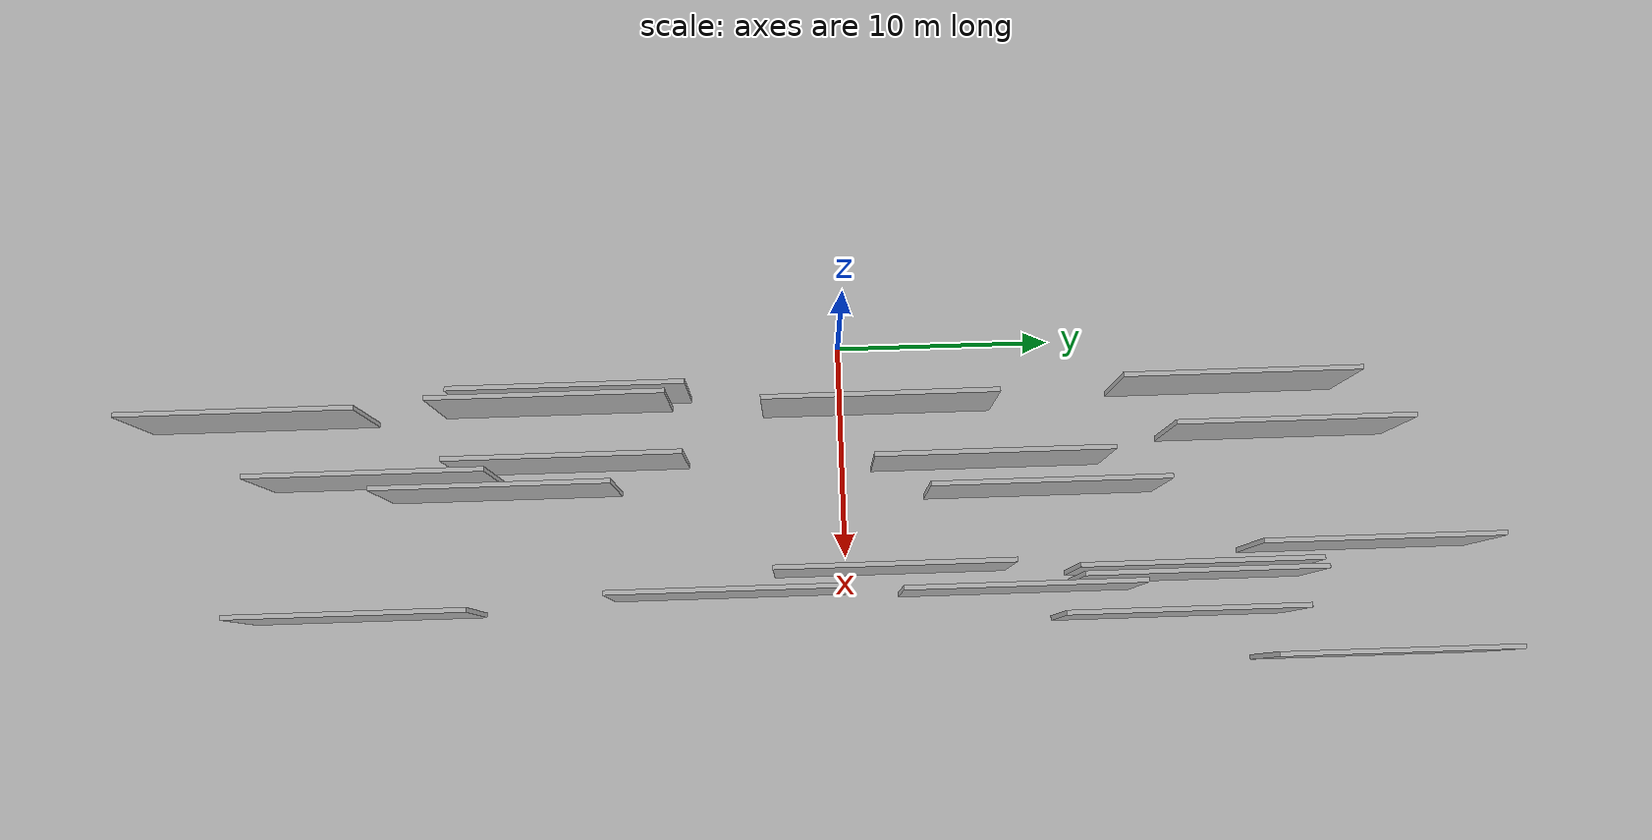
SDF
<?xml version="1.0" encoding="utf-8"?>

<sdf version="1.6">

   <world name="default">

      <gui fullscreen="0">

         <camera name="user_camera">

            <pose>-15 0 4.57585 0 0 0</pose>

            <view_controller>orbit</view_controller>

         </camera>

      </gui>

      <scene>

         <sky>

           <clouds>

             <speed>12</speed>

           </clouds>

         </sky>

         <ambient>0.4 0.4 0.4 1</ambient>

         <background>0.7 0.7 0.7 1</background>

         <shadows>1</shadows>

      </scene>

      <gravity>0 0 -9.8066</gravity>

      <magnetic_field>6e-06 2.3e-05 -4.2e-05</magnetic_field>

      <physics default="0" name="default_physics" type="ode">

         <ode>

            <solver>

               <type>quick</type>

               <iters>10</iters>

               <sor>1.0</sor>

               <use_dynamic_moi_rescaling>0</use_dynamic_moi_rescaling>

            </solver>

            <constraints>

               <cfm>0</cfm>

               <erp>0.2</erp>

               <contact_max_correcting_vel>100</contact_max_correcting_vel>

               <contact_surface_layer>0.001</contact_surface_layer>

            </constraints>

         </ode>

         <max_step_size>0.004</max_step_size>

         <real_time_factor>1</real_time_factor>

         <real_time_update_rate>250</real_time_update_rate>

      </physics>

      <light name="sun" type="directional">

         <cast_shadows>1</cast_shadows>

         <pose>0 0 10 0 0 0</pose>

         <diffuse>0.8 0.8 0.8 1</diffuse>

         <specular>0.2 0.2 0.2 1</specular>

         <attenuation>

            <range>1000</range>

            <constant>0.9</constant>

            <linear>0.01</linear>

            <quadratic>0.001</quadratic>

         </attenuation>

         <direction>-0.5 0.1 -0.9</direction>

      </light>

      <include>

         <name>ground_plane_1</name>

         <uri>model://HANNAS_ground_plane</uri>

         <pose>0 0 0  0 0 0</pose>

      </include>

      <include>

         <name>ground_plane_2</name>

         <uri>model://HANNAS_ground_plane</uri>

         <pose>100 0 0  0 0 0</pose>

      </include>

      <model name="HANNAS_wall_1">

         <static>1</static>

         <pose frame="">12.5194 -20.7181 5.0 0.000000 0.000000 1.570796</pose>

         <link name="link">

            <pose frame="">0 0 2.00 0 0 0</pose>

            <collision name="collision">

               <geometry>

                  <box>

                     <size>10.00 0.2 4.00</size>

                  </box>

               </geometry>

               <max_contacts>10</max_contacts>

               <surface>

                  <contact>

                     <ode/>

                  </contact>

                  <bounce/>

                  <friction>

                     <torsional>

                        <ode/>

                     </torsional>

                     <ode/>

                  </friction>

               </surface>

            </collision>

            <visual name="visual">

               <cast_shadows>0</cast_shadows>

               <geometry>

                  <box>

                     <size>10.00 0.2 4.00</size>

                  </box>

               </geometry>

               <material>

                  <script>

                     <uri>model://HANNAS_wall/materials/scripts</uri>

                     <uri>model://HANNAS_wall/materials/textures</uri>

                     <name>vrc/HANNAS_wall</name>

                  </script>

               </material>

            </visual>

            <self_collide>0</self_collide>

            <enable_wind>0</enable_wind>

            <kinematic>0</kinematic>

         </link>

      </model>

      <model name="HANNAS_wall_2">

         <static>1</static>

         <pose frame="">3.9833 -25.4585 5.0 0.000000 0.000000 1.570796</pose>

         <link name="link">

            <pose frame="">0 0 2.00 0 0 0</pose>

            <collision name="collision">

               <geometry>

                  <box>

                     <size>10.00 0.2 4.00</size>

                  </box>

               </geometry>

               <max_contacts>10</max_contacts>

               <surface>

                  <contact>

                     <ode/>

                  </contact>

                  <bounce/>

                  <friction>

                     <torsional>

                        <ode/>

                     </torsional>

                     <ode/>

                  </friction>

               </surface>

            </collision>

            <visual name="visual">

               <cast_shadows>0</cast_shadows>

               <geometry>

                  <box>

                     <size>10.00 0.2 4.00</size>

                  </box>

               </geometry>

               <material>

                  <script>

                     <uri>model://HANNAS_wall/materials/scripts</uri>

                     <uri>model://HANNAS_wall/materials/textures</uri>

                     <name>vrc/HANNAS_wall</name>

                  </script>

               </material>

            </visual>

            <self_collide>0</self_collide>

            <enable_wind>0</enable_wind>

            <kinematic>0</kinematic>

         </link>

      </model>

      <model name="HANNAS_wall_3">

         <static>1</static>

         <pose frame="">10.7550 21.8857 5.0 0.000000 0.000000 1.570796</pose>

         <link name="link">

            <pose frame="">0 0 2.00 0 0 0</pose>

            <collision name="collision">

               <geometry>

                  <box>

                     <size>10.00 0.2 4.00</size>

                  </box>

               </geometry>

               <max_contacts>10</max_contacts>

               <surface>

                  <contact>

                     <ode/>

                  </contact>

                  <bounce/>

                  <friction>

                     <torsional>

                        <ode/>

                     </torsional>

                     <ode/>

                  </friction>

               </surface>

            </collision>

            <visual name="visual">

               <cast_shadows>0</cast_shadows>

               <geometry>

                  <box>

                     <size>10.00 0.2 4.00</size>

                  </box>

               </geometry>

               <material>

                  <script>

                     <uri>model://HANNAS_wall/materials/scripts</uri>

                     <uri>model://HANNAS_wall/materials/textures</uri>

                     <name>vrc/HANNAS_wall</name>

                  </script>

               </material>

            </visual>

            <self_collide>0</self_collide>

            <enable_wind>0</enable_wind>

            <kinematic>0</kinematic>

         </link>

      </model>

      <model name="HANNAS_wall_4">

         <static>1</static>

         <pose frame="">11.2011 1.7666 5.0 0.000000 0.000000 1.570796</pose>

         <link name="link">

            <pose frame="">0 0 2.00 0 0 0</pose>

            <collision name="collision">

               <geometry>

                  <box>

                     <size>10.00 0.2 4.00</size>

                  </box>

               </geometry>

               <max_contacts>10</max_contacts>

               <surface>

                  <contact>

                     <ode/>

                  </contact>

                  <bounce/>

                  <friction>

                     <torsional>

                        <ode/>

                     </torsional>

                     <ode/>

                  </friction>

               </surface>

            </collision>

            <visual name="visual">

               <cast_shadows>0</cast_shadows>

               <geometry>

                  <box>

                     <size>10.00 0.2 4.00</size>

                  </box>

               </geometry>

               <material>

                  <script>

                     <uri>model://HANNAS_wall/materials/scripts</uri>

                     <uri>model://HANNAS_wall/materials/textures</uri>

                     <name>vrc/HANNAS_wall</name>

                  </script>

               </material>

            </visual>

            <self_collide>0</self_collide>

            <enable_wind>0</enable_wind>

            <kinematic>0</kinematic>

         </link>

      </model>

      <model name="HANNAS_wall_5">

         <static>1</static>

         <pose frame="">12.0166 -5.1796 5.0 0.000000 0.000000 1.570796</pose>

         <link name="link">

            <pose frame="">0 0 2.00 0 0 0</pose>

            <collision name="collision">

               <geometry>

                  <box>

                     <size>10.00 0.2 4.00</size>

                  </box>

               </geometry>

               <max_contacts>10</max_contacts>

               <surface>

                  <contact>

                     <ode/>

                  </contact>

                  <bounce/>

                  <friction>

                     <torsional>

                        <ode/>

                     </torsional>

                     <ode/>

                  </friction>

               </surface>

            </collision>

            <visual name="visual">

               <cast_shadows>0</cast_shadows>

               <geometry>

                  <box>

                     <size>10.00 0.2 4.00</size>

                  </box>

               </geometry>

               <material>

                  <script>

                     <uri>model://HANNAS_wall/materials/scripts</uri>

                     <uri>model://HANNAS_wall/materials/textures</uri>

                     <name>vrc/HANNAS_wall</name>

                  </script>

               </material>

            </visual>

            <self_collide>0</self_collide>

            <enable_wind>0</enable_wind>

            <kinematic>0</kinematic>

         </link>

      </model>

      <model name="HANNAS_wall_6">

         <static>1</static>

         <pose frame="">6.6592 6.1158 5.0 0.000000 0.000000 1.570796</pose>

         <link name="link">

            <pose frame="">0 0 2.00 0 0 0</pose>

            <collision name="collision">

               <geometry>

                  <box>

                     <size>10.00 0.2 4.00</size>

                  </box>

               </geometry>

               <max_contacts>10</max_contacts>

               <surface>

                  <contact>

                     <ode/>

                  </contact>

                  <bounce/>

                  <friction>

                     <torsional>

                        <ode/>

                     </torsional>

                     <ode/>

                  </friction>

               </surface>

            </collision>

            <visual name="visual">

               <cast_shadows>0</cast_shadows>

               <geometry>

                  <box>

                     <size>10.00 0.2 4.00</size>

                  </box>

               </geometry>

               <material>

                  <script>

                     <uri>model://HANNAS_wall/materials/scripts</uri>

                     <uri>model://HANNAS_wall/materials/textures</uri>

                     <name>vrc/HANNAS_wall</name>

                  </script>

               </material>

            </visual>

            <self_collide>0</self_collide>

            <enable_wind>0</enable_wind>

            <kinematic>0</kinematic>

         </link>

      </model>

      <model name="HANNAS_wall_7">

         <static>1</static>

         <pose frame="">11.8590 14.5193 5.0 0.000000 0.000000 1.570796</pose>

         <link name="link">

            <pose frame="">0 0 2.00 0 0 0</pose>

            <collision name="collision">

               <geometry>

                  <box>

                     <size>10.00 0.2 4.00</size>

                  </box>

               </geometry>

               <max_contacts>10</max_contacts>

               <surface>

                  <contact>

                     <ode/>

                  </contact>

                  <bounce/>

                  <friction>

                     <torsional>

                        <ode/>

                     </torsional>

                     <ode/>

                  </friction>

               </surface>

            </collision>

            <visual name="visual">

               <cast_shadows>0</cast_shadows>

               <geometry>

                  <box>

                     <size>10.00 0.2 4.00</size>

                  </box>

               </geometry>

               <material>

                  <script>

                     <uri>model://HANNAS_wall/materials/scripts</uri>

                     <uri>model://HANNAS_wall/materials/textures</uri>

                     <name>vrc/HANNAS_wall</name>

                  </script>

               </material>

            </visual>

            <self_collide>0</self_collide>

            <enable_wind>0</enable_wind>

            <kinematic>0</kinematic>

         </link>

      </model>

      <model name="HANNAS_wall_8">

         <static>1</static>

         <pose frame="">6.2745 -11.8314 5.0 0.000000 0.000000 1.570796</pose>

         <link name="link">

            <pose frame="">0 0 2.00 0 0 0</pose>

            <collision name="collision">

               <geometry>

                  <box>

                     <size>10.00 0.2 4.00</size>

                  </box>

               </geometry>

               <max_contacts>10</max_contacts>

               <surface>

                  <contact>

                     <ode/>

                  </contact>

                  <bounce/>

                  <friction>

                     <torsional>

                        <ode/>

                     </torsional>

                     <ode/>

                  </friction>

               </surface>

            </collision>

            <visual name="visual">

               <cast_shadows>0</cast_shadows>

               <geometry>

                  <box>

                     <size>10.00 0.2 4.00</size>

                  </box>

               </geometry>

               <material>

                  <script>

                     <uri>model://HANNAS_wall/materials/scripts</uri>

                     <uri>model://HANNAS_wall/materials/textures</uri>

                     <name>vrc/HANNAS_wall</name>

                  </script>

               </material>

            </visual>

            <self_collide>0</self_collide>

            <enable_wind>0</enable_wind>

            <kinematic>0</kinematic>

         </link>

      </model>

      <model name="HANNAS_wall_9">

         <static>1</static>

         <pose frame="">3.3178 -11.6795 5.0 0.000000 0.000000 1.570796</pose>

         <link name="link">

            <pose frame="">0 0 2.00 0 0 0</pose>

            <collision name="collision">

               <geometry>

                  <box>

                     <size>10.00 0.2 4.00</size>

                  </box>

               </geometry>

               <max_contacts>10</max_contacts>

               <surface>

                  <contact>

                     <ode/>

                  </contact>

                  <bounce/>

                  <friction>

                     <torsional>

                        <ode/>

                     </torsional>

                     <ode/>

                  </friction>

               </surface>

            </collision>

            <visual name="visual">

               <cast_shadows>0</cast_shadows>

               <geometry>

                  <box>

                     <size>10.00 0.2 4.00</size>

                  </box>

               </geometry>

               <material>

                  <script>

                     <uri>model://HANNAS_wall/materials/scripts</uri>

                     <uri>model://HANNAS_wall/materials/textures</uri>

                     <name>vrc/HANNAS_wall</name>

                  </script>

               </material>

            </visual>

            <self_collide>0</self_collide>

            <enable_wind>0</enable_wind>

            <kinematic>0</kinematic>

         </link>

      </model>

      <model name="HANNAS_wall_10">

         <static>1</static>

         <pose frame="">7.9572 8.3793 5.0 0.000000 0.000000 1.570796</pose>

         <link name="link">

            <pose frame="">0 0 2.00 0 0 0</pose>

            <collision name="collision">

               <geometry>

                  <box>

                     <size>10.00 0.2 4.00</size>

                  </box>

               </geometry>

               <max_contacts>10</max_contacts>

               <surface>

                  <contact>

                     <ode/>

                  </contact>

                  <bounce/>

                  <friction>

                     <torsional>

                        <ode/>

                     </torsional>

                     <ode/>

                  </friction>

               </surface>

            </collision>

            <visual name="visual">

               <cast_shadows>0</cast_shadows>

               <geometry>

                  <box>

                     <size>10.00 0.2 4.00</size>

                  </box>

               </geometry>

               <material>

                  <script>

                     <uri>model://HANNAS_wall/materials/scripts</uri>

                     <uri>model://HANNAS_wall/materials/textures</uri>

                     <name>vrc/HANNAS_wall</name>

                  </script>

               </material>

            </visual>

            <self_collide>0</self_collide>

            <enable_wind>0</enable_wind>

            <kinematic>0</kinematic>

         </link>

      </model>

      <model name="HANNAS_wall_11">

         <static>1</static>

         <pose frame="">11.5064 14.3454 5.0 0.000000 0.000000 1.570796</pose>

         <link name="link">

            <pose frame="">0 0 2.00 0 0 0</pose>

            <collision name="collision">

               <geometry>

                  <box>

                     <size>10.00 0.2 4.00</size>

                  </box>

               </geometry>

               <max_contacts>10</max_contacts>

               <surface>

                  <contact>

                     <ode/>

                  </contact>

                  <bounce/>

                  <friction>

                     <torsional>

                        <ode/>

                     </torsional>

                     <ode/>

                  </friction>

               </surface>

            </collision>

            <visual name="visual">

               <cast_shadows>0</cast_shadows>

               <geometry>

                  <box>

                     <size>10.00 0.2 4.00</size>

                  </box>

               </geometry>

               <material>

                  <script>

                     <uri>model://HANNAS_wall/materials/scripts</uri>

                     <uri>model://HANNAS_wall/materials/textures</uri>

                     <name>vrc/HANNAS_wall</name>

                  </script>

               </material>

            </visual>

            <self_collide>0</self_collide>

            <enable_wind>0</enable_wind>

            <kinematic>0</kinematic>

         </link>

      </model>

      <model name="HANNAS_wall_12">

         <static>1</static>

         <pose frame="">15.3811 22.1482 5.0 0.000000 0.000000 1.570796</pose>

         <link name="link">

            <pose frame="">0 0 2.00 0 0 0</pose>

            <collision name="collision">

               <geometry>

                  <box>

                     <size>10.00 0.2 4.00</size>

                  </box>

               </geometry>

               <max_contacts>10</max_contacts>

               <surface>

                  <contact>

                     <ode/>

                  </contact>

                  <bounce/>

                  <friction>

                     <torsional>

                        <ode/>

                     </torsional>

                     <ode/>

                  </friction>

               </surface>

            </collision>

            <visual name="visual">

               <cast_shadows>0</cast_shadows>

               <geometry>

                  <box>

                     <size>10.00 0.2 4.00</size>

                  </box>

               </geometry>

               <material>

                  <script>

                     <uri>model://HANNAS_wall/materials/scripts</uri>

                     <uri>model://HANNAS_wall/materials/textures</uri>

                     <name>vrc/HANNAS_wall</name>

                  </script>

               </material>

            </visual>

            <self_collide>0</self_collide>

            <enable_wind>0</enable_wind>

            <kinematic>0</kinematic>

         </link>

      </model>

      <model name="HANNAS_wall_13">

         <static>1</static>

         <pose frame="">4.0931 1.4488 5.0 0.000000 0.000000 1.570796</pose>

         <link name="link">

            <pose frame="">0 0 2.00 0 0 0</pose>

            <collision name="collision">

               <geometry>

                  <box>

                     <size>10.00 0.2 4.00</size>

                  </box>

               </geometry>

               <max_contacts>10</max_contacts>

               <surface>

                  <contact>

                     <ode/>

                  </contact>

                  <bounce/>

                  <friction>

                     <torsional>

                        <ode/>

                     </torsional>

                     <ode/>

                  </friction>

               </surface>

            </collision>

            <visual name="visual">

               <cast_shadows>0</cast_shadows>

               <geometry>

                  <box>

                     <size>10.00 0.2 4.00</size>

                  </box>

               </geometry>

               <material>

                  <script>

                     <uri>model://HANNAS_wall/materials/scripts</uri>

                     <uri>model://HANNAS_wall/materials/textures</uri>

                     <name>vrc/HANNAS_wall</name>

                  </script>

               </material>

            </visual>

            <self_collide>0</self_collide>

            <enable_wind>0</enable_wind>

            <kinematic>0</kinematic>

         </link>

      </model>

      <model name="HANNAS_wall_14">

         <static>1</static>

         <pose frame="">3.6320 16.6103 5.0 0.000000 0.000000 1.570796</pose>

         <link name="link">

            <pose frame="">0 0 2.00 0 0 0</pose>

            <collision name="collision">

               <geometry>

                  <box>

                     <size>10.00 0.2 4.00</size>

                  </box>

               </geometry>

               <max_contacts>10</max_contacts>

               <surface>

                  <contact>

                     <ode/>

                  </contact>

                  <bounce/>

                  <friction>

                     <torsional>

                        <ode/>

                     </torsional>

                     <ode/>

                  </friction>

               </surface>

            </collision>

            <visual name="visual">

               <cast_shadows>0</cast_shadows>

               <geometry>

                  <box>

                     <size>10.00 0.2 4.00</size>

                  </box>

               </geometry>

               <material>

                  <script>

                     <uri>model://HANNAS_wall/materials/scripts</uri>

                     <uri>model://HANNAS_wall/materials/textures</uri>

                     <name>vrc/HANNAS_wall</name>

                  </script>

               </material>

            </visual>

            <self_collide>0</self_collide>

            <enable_wind>0</enable_wind>

            <kinematic>0</kinematic>

         </link>

      </model>

      <model name="HANNAS_wall_15">

         <static>1</static>

         <pose frame="">7.4076 -14.8116 5.0 0.000000 0.000000 1.570796</pose>

         <link name="link">

            <pose frame="">0 0 2.00 0 0 0</pose>

            <collision name="collision">

               <geometry>

                  <box>

                     <size>10.00 0.2 4.00</size>

                  </box>

               </geometry>

               <max_contacts>10</max_contacts>

               <surface>

                  <contact>

                     <ode/>

                  </contact>

                  <bounce/>

                  <friction>

                     <torsional>

                        <ode/>

                     </torsional>

                     <ode/>

                  </friction>

               </surface>

            </collision>

            <visual name="visual">

               <cast_shadows>0</cast_shadows>

               <geometry>

                  <box>

                     <size>10.00 0.2 4.00</size>

                  </box>

               </geometry>

               <material>

                  <script>

                     <uri>model://HANNAS_wall/materials/scripts</uri>

                     <uri>model://HANNAS_wall/materials/textures</uri>

                     <name>vrc/HANNAS_wall</name>

                  </script>

               </material>

            </visual>

            <self_collide>0</self_collide>

            <enable_wind>0</enable_wind>

            <kinematic>0</kinematic>

         </link>

      </model>

      <model name="HANNAS_wall_16">

         <static>1</static>

         <pose frame="">6.7441 -20.0265 5.0 0.000000 0.000000 1.570796</pose>

         <link name="link">

            <pose frame="">0 0 2.00 0 0 0</pose>

            <collision name="collision">

               <geometry>

                  <box>

                     <size>10.00 0.2 4.00</size>

                  </box>

               </geometry>

               <max_contacts>10</max_contacts>

               <surface>

                  <contact>

                     <ode/>

                  </contact>

                  <bounce/>

                  <friction>

                     <torsional>

                        <ode/>

                     </torsional>

                     <ode/>

                  </friction>

               </surface>

            </collision>

            <visual name="visual">

               <cast_shadows>0</cast_shadows>

               <geometry>

                  <box>

                     <size>10.00 0.2 4.00</size>

                  </box>

               </geometry>

               <material>

                  <script>

                     <uri>model://HANNAS_wall/materials/scripts</uri>

                     <uri>model://HANNAS_wall/materials/textures</uri>

                     <name>vrc/HANNAS_wall</name>

                  </script>

               </material>

            </visual>

            <self_collide>0</self_collide>

            <enable_wind>0</enable_wind>

            <kinematic>0</kinematic>

         </link>

      </model>

      <model name="HANNAS_wall_17">

         <static>1</static>

         <pose frame="">5.7139 18.6696 5.0 0.000000 0.000000 1.570796</pose>

         <link name="link">

            <pose frame="">0 0 2.00 0 0 0</pose>

            <collision name="collision">

               <geometry>

                  <box>

                     <size>10.00 0.2 4.00</size>

                  </box>

               </geometry>

               <max_contacts>10</max_contacts>

               <surface>

                  <contact>

                     <ode/>

                  </contact>

                  <bounce/>

                  <friction>

                     <torsional>

                        <ode/>

                     </torsional>

                     <ode/>

                  </friction>

               </surface>

            </collision>

            <visual name="visual">

               <cast_shadows>0</cast_shadows>

               <geometry>

                  <box>

                     <size>10.00 0.2 4.00</size>

                  </box>

               </geometry>

               <material>

                  <script>

                     <uri>model://HANNAS_wall/materials/scripts</uri>

                     <uri>model://HANNAS_wall/materials/textures</uri>

                     <name>vrc/HANNAS_wall</name>

                  </script>

               </material>

            </visual>

            <self_collide>0</self_collide>

            <enable_wind>0</enable_wind>

            <kinematic>0</kinematic>

         </link>

      </model>

      <model name="HANNAS_wall_18">

         <static>1</static>

         <pose frame="">13.4315 13.6559 5.0 0.000000 0.000000 1.570796</pose>

         <link name="link">

            <pose frame="">0 0 2.00 0 0 0</pose>

            <collision name="collision">

               <geometry>

                  <box>

                     <size>10.00 0.2 4.00</size>

                  </box>

               </geometry>

               <max_contacts>10</max_contacts>

               <surface>

                  <contact>

                     <ode/>

                  </contact>

                  <bounce/>

                  <friction>

                     <torsional>

                        <ode/>

                     </torsional>

                     <ode/>

                  </friction>

               </surface>

            </collision>

            <visual name="visual">

               <cast_shadows>0</cast_shadows>

               <geometry>

                  <box>

                     <size>10.00 0.2 4.00</size>

                  </box>

               </geometry>

               <material>

                  <script>

                     <uri>model://HANNAS_wall/materials/scripts</uri>

                     <uri>model://HANNAS_wall/materials/textures</uri>

                     <name>vrc/HANNAS_wall</name>

                  </script>

               </material>

            </visual>

            <self_collide>0</self_collide>

            <enable_wind>0</enable_wind>

            <kinematic>0</kinematic>

         </link>

      </model>

      <model name="HANNAS_wall_19">

         <static>1</static>

         <pose frame="">3.6857 -12.5373 5.0 0.000000 0.000000 1.570796</pose>

         <link name="link">

            <pose frame="">0 0 2.00 0 0 0</pose>

            <collision name="collision">

               <geometry>

                  <box>

                     <size>10.00 0.2 4.00</size>

                  </box>

               </geometry>

               <max_contacts>10</max_contacts>

               <surface>

                  <contact>

                     <ode/>

                  </contact>

                  <bounce/>

                  <friction>

                     <torsional>

                        <ode/>

                     </torsional>

                     <ode/>

                  </friction>

               </surface>

            </collision>

            <visual name="visual">

               <cast_shadows>0</cast_shadows>

               <geometry>

                  <box>

                     <size>10.00 0.2 4.00</size>

                  </box>

               </geometry>

               <material>

                  <script>

                     <uri>model://HANNAS_wall/materials/scripts</uri>

                     <uri>model://HANNAS_wall/materials/textures</uri>

                     <name>vrc/HANNAS_wall</name>

                  </script>

               </material>

            </visual>

            <self_collide>0</self_collide>

            <enable_wind>0</enable_wind>

            <kinematic>0</kinematic>

         </link>

      </model>

      <model name="HANNAS_wall_20">

         <static>1</static>

         <pose frame="">12.2030 7.0953 5.0 0.000000 0.000000 1.570796</pose>

         <link name="link">

            <pose frame="">0 0 2.00 0 0 0</pose>

            <collision name="collision">

               <geometry>

                  <box>

                     <size>10.00 0.2 4.00</size>

                  </box>

               </geometry>

               <max_contacts>10</max_contacts>

               <surface>

                  <contact>

                     <ode/>

                  </contact>

                  <bounce/>

                  <friction>

                     <torsional>

                        <ode/>

                     </torsional>

                     <ode/>

                  </friction>

               </surface>

            </collision>

            <visual name="visual">

               <cast_shadows>0</cast_shadows>

               <geometry>

                  <box>

                     <size>10.00 0.2 4.00</size>

                  </box>

               </geometry>

               <material>

                  <script>

                     <uri>model://HANNAS_wall/materials/scripts</uri>

                     <uri>model://HANNAS_wall/materials/textures</uri>

                     <name>vrc/HANNAS_wall</name>

                  </script>

               </material>

            </visual>

            <self_collide>0</self_collide>

            <enable_wind>0</enable_wind>

            <kinematic>0</kinematic>

         </link>

      </model>

   </world>

</sdf>

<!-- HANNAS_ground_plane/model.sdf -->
<sdf version="1.4">
<model name="HANNAS_ground_plane">
  <static>true</static>
    <link name="link">
      <collision name="collision">
        <geometry>
          <plane>
            <normal>0 0 1</normal>
            <size>1000 1000</size>
          </plane>
        </geometry>
        <surface>
          <friction>
            <ode>
              <mu>100</mu>
              <mu2>50</mu2>
            </ode>
          </friction>
        </surface>
      </collision>
      <visual name="visual">
        <cast_shadows>false</cast_shadows>
        <geometry>
          <plane>
            <normal>0 0 1</normal>
            <size>1000 1000</size>
          </plane>
        </geometry>
        <material>
          <script>
            <uri>model://HANNAS_ground_plane/materials/scripts/HANNAS_ground_plane.material</uri>
	    <uri>model://HANNAS_ground_plane/materials/textures</uri>
            <name>HANNASGroundPlane/Image</name>
          </script>
        </material>
      </visual>
    </link>
  </model>
</sdf>
